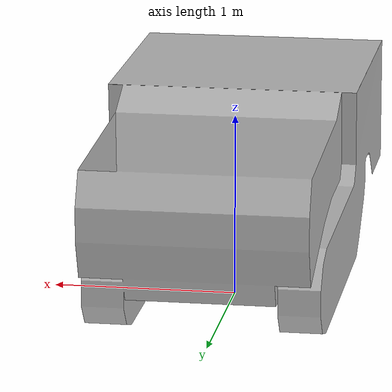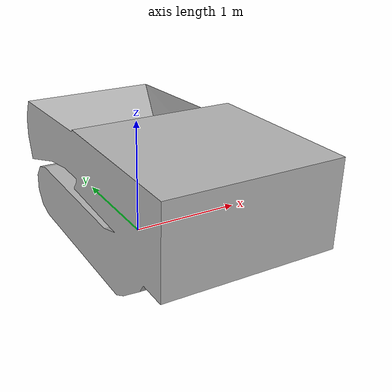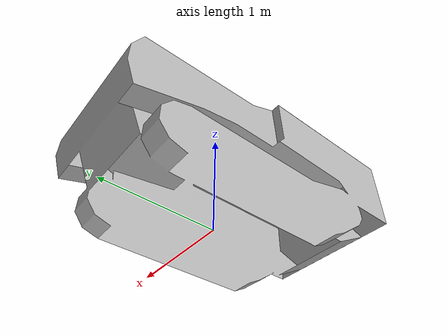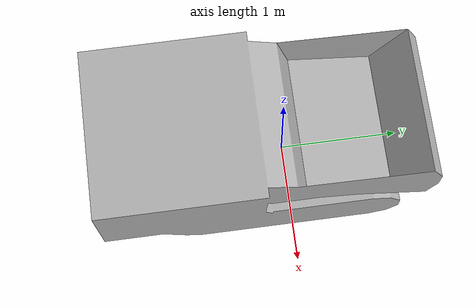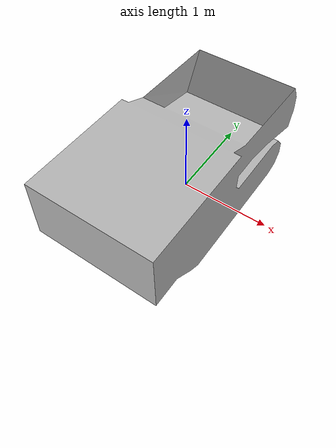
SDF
<?xml version="1.0" ?>
<sdf version="1.6">
  <model name="m9ace">

    <static>true</static>

    <link name="link">

      <inertial>
	<pose>0 0 0 0 0 0</pose>
        <mass>100.0</mass>
        <inertia>
          <ixx>1</ixx>
          <ixy>0</ixy>
          <ixz>0</ixz>
          <iyy>1</iyy>
          <iyz>0</iyz>
          <izz>1</izz>
        </inertia>
      </inertial>

      <collision name="collision">
        <geometry>
          <mesh>
            <scale> 0.5 0.5 0.5 </scale>
            <uri>model://m9ace/meshes/m9ace.obj</uri>
          </mesh>
        </geometry>
	<surface>
          <contact>
            <ode>
              <max_vel>0.1</max_vel>
              <min_depth>0.001</min_depth>
            </ode>
          </contact>
        </surface>
      </collision>

      <visual name="visual">
	<pose>0 0 0 1.5708 0 0</pose>
        <geometry>
          <mesh>
            <scale>0.5 0.5 0.5</scale>
            <uri>model://m9ace/meshes/m9ace.obj</uri>
          </mesh>
        </geometry>
      </visual>
    </link>
  </model>
</sdf>
